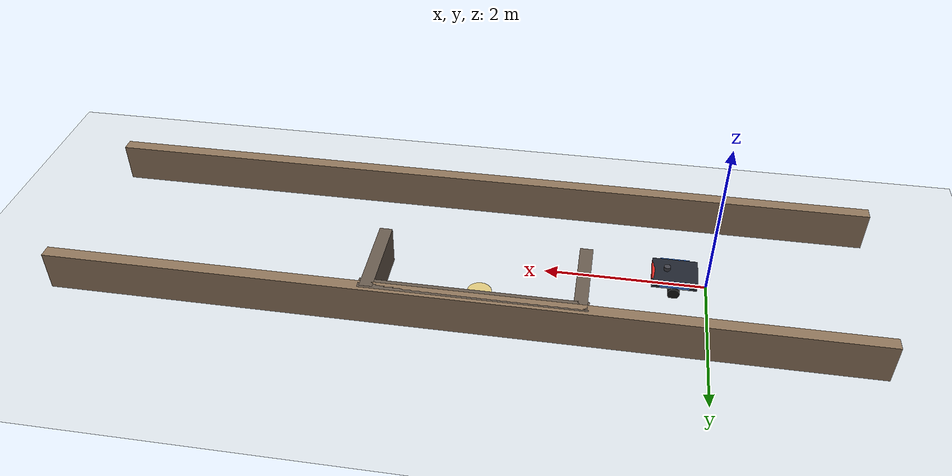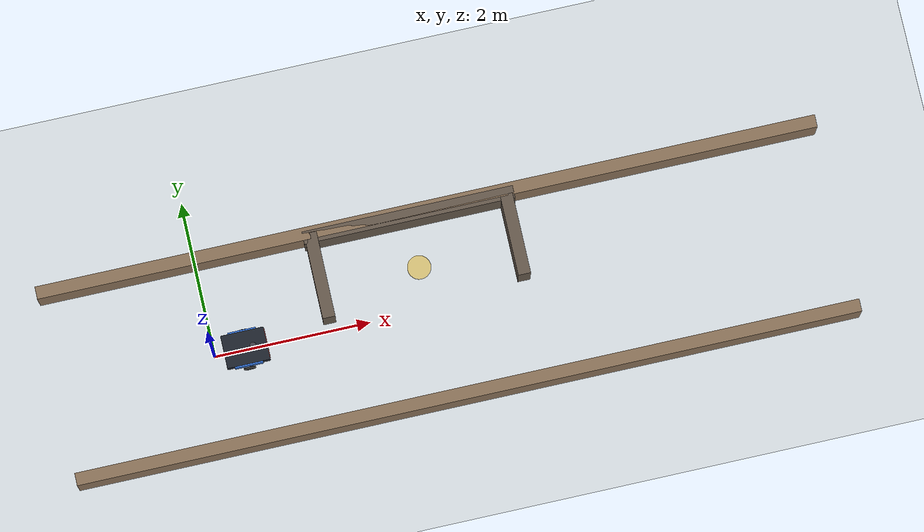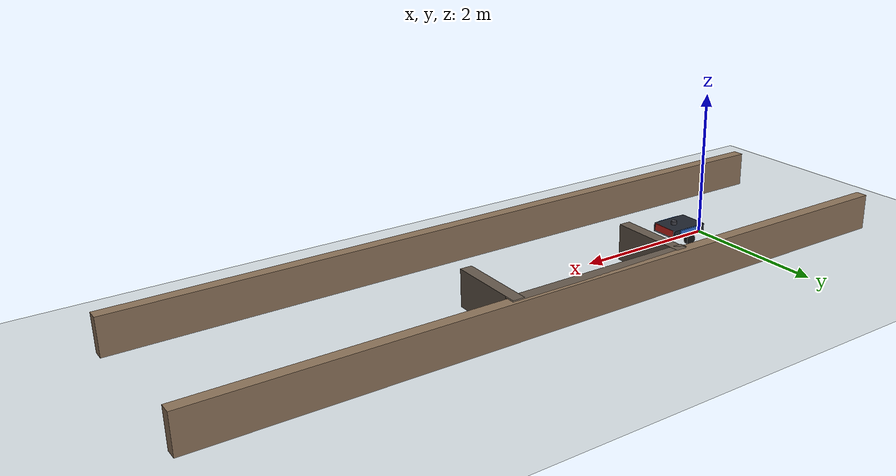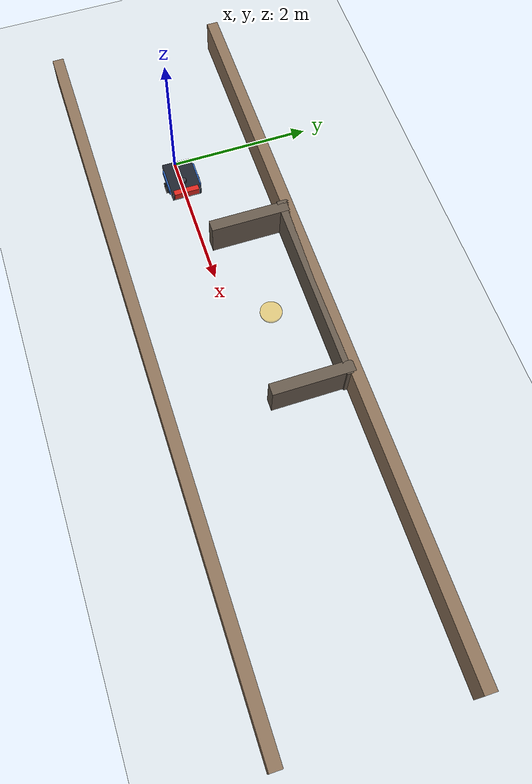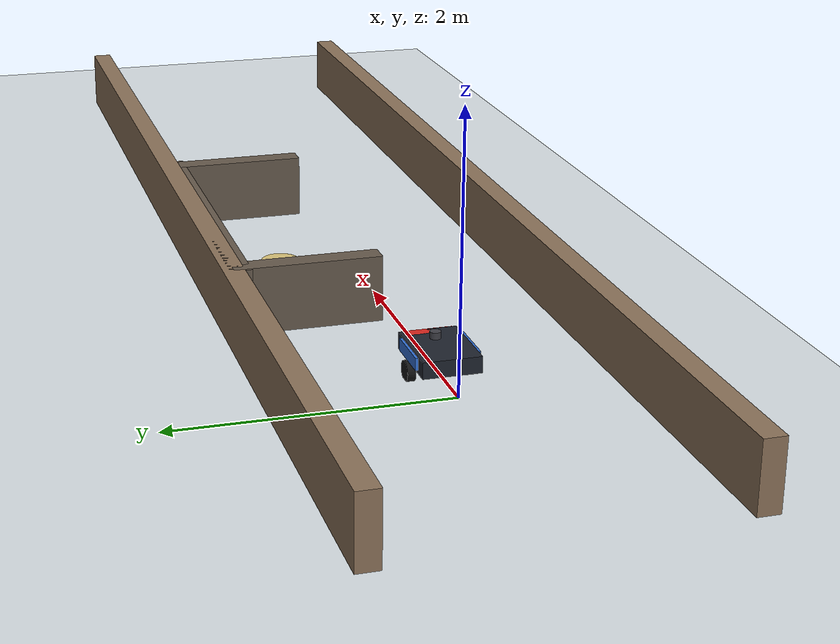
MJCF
<mujoco model="diffdrive_dock">
  <!-- Parallel-park bay on +y side of a roadway. -->
  <compiler angle="radian" balanceinertia="true" autolimits="true"/>
  <option timestep="0.002" gravity="0 0 -9.81" integrator="implicitfast"/>

  <default>
    <geom friction="1 0.5 0.01" rgba="0.7 0.7 0.7 1"/>
  </default>

  <worldbody>
    <light pos="0 0 3" dir="0 0 -1" diffuse="0.8 0.8 0.8"/>
    <geom name="floor" type="plane" size="15 8 0.05" rgba="0.85 0.88 0.9 1" friction="1 0.5 0.01"/>

    <geom name="curb_l" type="box" pos="3.0 1.2 0.25" size="5.0 0.08 0.25" rgba="0.55 0.45 0.35 1"/>
    <geom name="curb_r" type="box" pos="3.0 -1.2 0.25" size="5.0 0.08 0.25" rgba="0.55 0.45 0.35 1"/>
    <geom name="bay_front" type="box" pos="1.5 0.65 0.25" size="0.08 0.55 0.25" rgba="0.4 0.35 0.3 1"/>
    <geom name="bay_rear" type="box" pos="4.0 0.65 0.25" size="0.08 0.55 0.25" rgba="0.4 0.35 0.3 1"/>
    <geom name="bay_back" type="box" pos="2.75 1.15 0.25" size="1.35 0.08 0.25" rgba="0.4 0.35 0.3 1"/>
    <geom name="dock_marker" type="cylinder" size="0.15 0.02" pos="2.75 0.55 0.02" rgba="0.9 0.7 0.1 0.5" contype="0" conaffinity="0"/>

    <body name="base" pos="0.4 0 0.05">
      <freejoint name="root"/>
      <geom name="chassis" type="box" size="0.275 0.21 0.06" pos="0 0 0.11" mass="8.0" rgba="0.12 0.14 0.18 1" group="1" contype="1" conaffinity="1"/>
      <geom name="armor_front" type="box" size="0.04 0.18 0.05" pos="0.24 0 0.12" mass="0.3" rgba="0.85 0.15 0.12 1" group="1" contype="0" conaffinity="0"/>
      <geom name="armor_rear" type="box" size="0.03 0.16 0.045" pos="-0.24 0 0.12" mass="0.2" rgba="0.85 0.15 0.12 1" group="1" contype="0" conaffinity="0"/>
      <geom name="armor_left" type="box" size="0.18 0.03 0.045" pos="0 0.20 0.12" mass="0.2" rgba="0.2 0.45 0.85 1" group="1" contype="0" conaffinity="0"/>
      <geom name="armor_right" type="box" size="0.18 0.03 0.045" pos="0 -0.20 0.12" mass="0.2" rgba="0.2 0.45 0.85 1" group="1" contype="0" conaffinity="0"/>
      <geom name="lidar_mount" type="cylinder" size="0.04 0.025" pos="0.10 0 0.20" mass="0.08" rgba="0.25 0.25 0.28 1" contype="0" conaffinity="0" group="1"/>
      <body name="left_wheel" pos="0 0.22 0">
        <joint name="left_wheel_joint" type="hinge" axis="0 1 0" damping="0.12"/>
        <geom name="left_wheel_geom" type="cylinder" size="0.075 0.03" quat="0.7071 0.7071 0 0" mass="0.6" rgba="0.08 0.08 0.08 1" friction="1.5 0.5 0.01" group="1" contype="0" conaffinity="0"/>
      </body>
      <body name="right_wheel" pos="0 -0.22 0">
        <joint name="right_wheel_joint" type="hinge" axis="0 1 0" damping="0.12"/>
        <geom name="right_wheel_geom" type="cylinder" size="0.075 0.03" quat="0.7071 0.7071 0 0" mass="0.6" rgba="0.08 0.08 0.08 1" friction="1.5 0.5 0.01" group="1" contype="0" conaffinity="0"/>
      </body>
    </body>
  </worldbody>
</mujoco>
